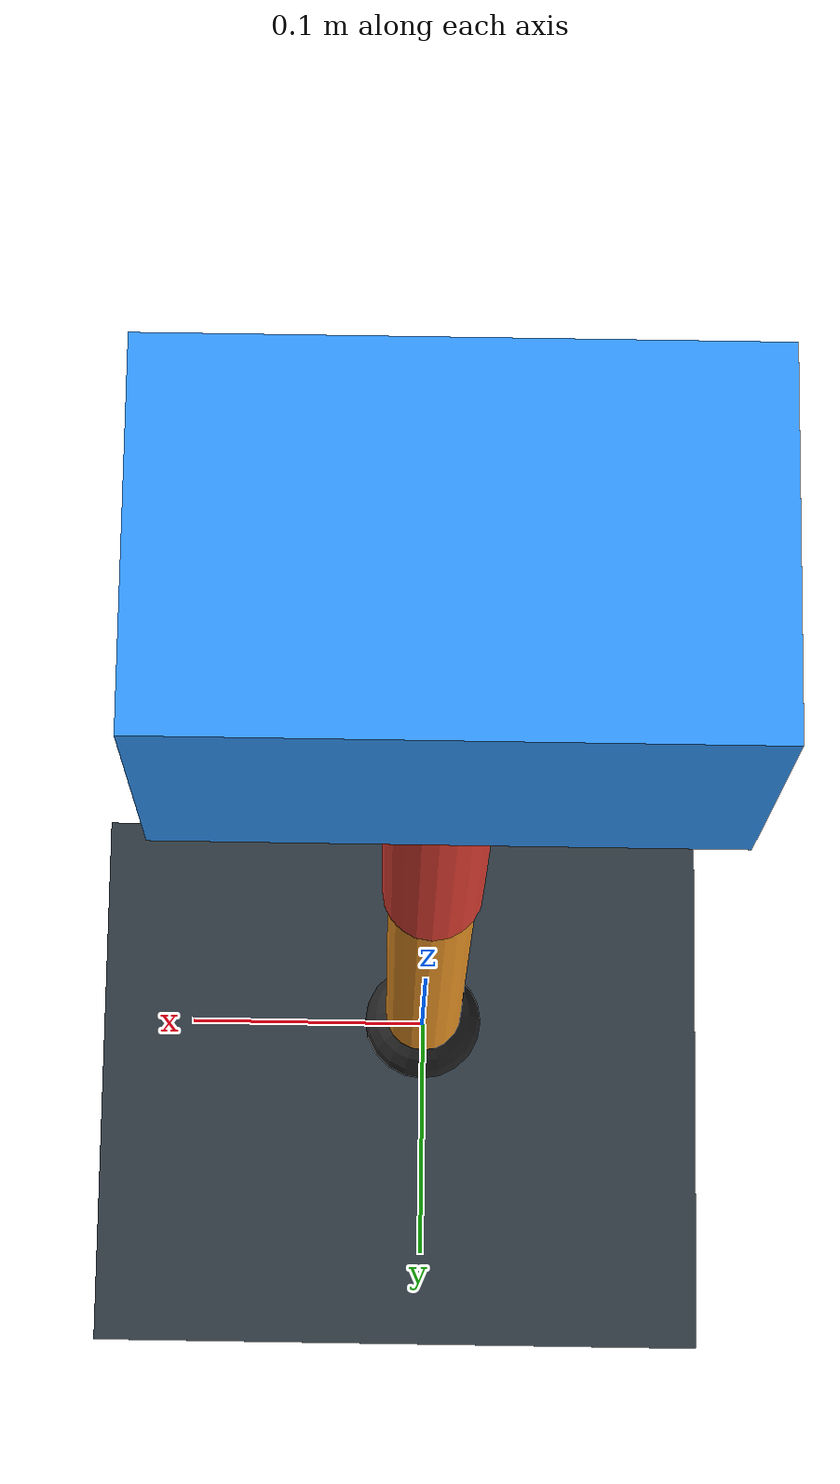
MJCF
<mujoco model="single_axis_two_bar">
  <compiler angle="radian" inertiafromgeom="true"/>
  <option timestep="0.001" integrator="implicitfast" gravity="0 0 -9.81"/>
  <default>
    <joint damping="0.08"/>
    <geom friction="1.2 0.01 0.0001" condim="3"/>
  </default>
  <worldbody>
    <geom name="floor" type="plane" size="5 5 0.1" rgba="0.18 0.22 0.25 1"/>
    <body name="carriage" pos="0 0 0.5758418529767723">
      <joint name="pole_slide" type="slide" axis="0 0 1"/>
      <geom name="payload" type="box" size="0.08 0.05 0.05" mass="2.957620367381408" rgba="0.2 0.6 1 1"/>
      <body name="thigh" pos="0 0 0">
        <joint name="hip" type="hinge" axis="0 1 0"/>
        <geom name="thigh_link" type="capsule" fromto="0 0 0 0 0 -0.31834477654272947" size="0.018" mass="0.2268248598417793" rgba="0.9 0.25 0.2 1"/>
        <body name="shank" pos="0 0 -0.31834477654272947">
          <joint name="knee" type="hinge" axis="0 1 0"/>
          <geom name="shank_link" type="capsule" fromto="0 0 0 0 0 -0.24953342240239657" size="0.016" mass="0.17779586075496978" rgba="0.95 0.6 0.15 1"/>
          <geom name="foot" type="sphere" pos="0 0 -0.24953342240239657" size="0.025" mass="0.03" rgba="0.15 0.15 0.15 1"/>
          <site name="toe" pos="0 0 -0.24953342240239657" size="0.008"/>
        </body>
      </body>
    </body>
  </worldbody>
  <actuator>
    <motor name="hip_motor" joint="hip" ctrlrange="-31.23439191057775 31.23439191057775"/>
    <motor name="knee_motor" joint="knee" ctrlrange="-25.62254343197877 25.62254343197877"/>
  </actuator>
</mujoco>
